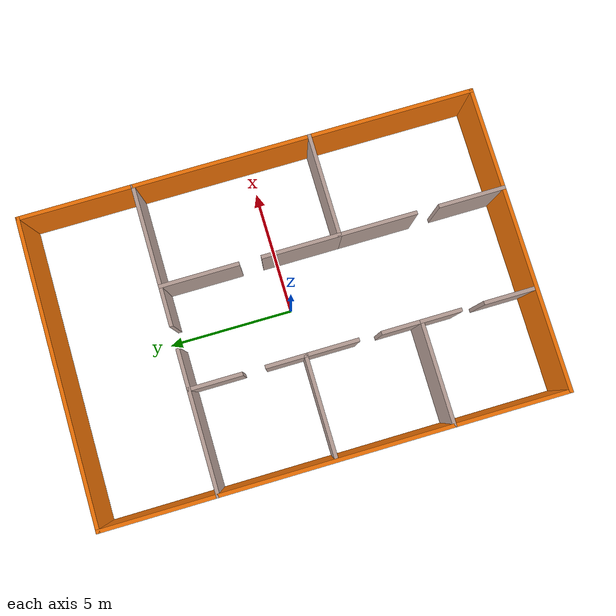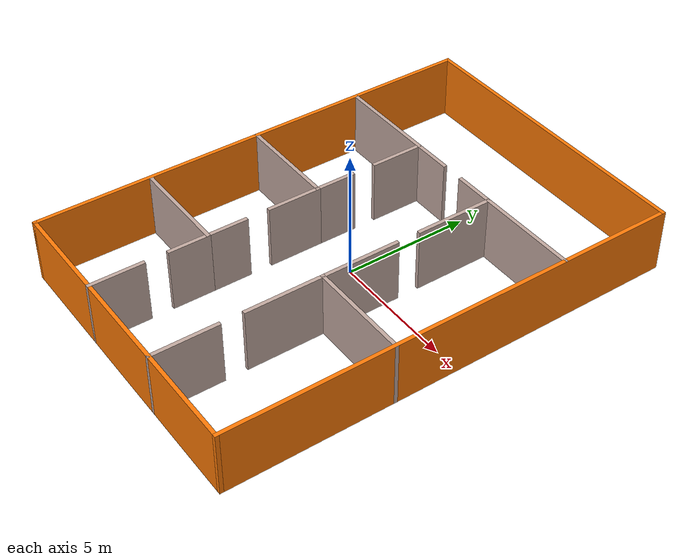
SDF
<?xml version='1.0'?>
<sdf version='1.7'>
  <model name='map_offices'>
    <pose>0 0 0 0 -0 0</pose>
    <link name='Wall_10'>
      <collision name='Wall_10_Collision'>
        <geometry>
          <box>
            <size>12.15 0.15 2.5</size>
          </box>
        </geometry>
        <pose>0 0 1.25 0 -0 0</pose>
      </collision>
      <visual name='Wall_10_Visual'>
        <pose>0 0 1.25 0 -0 0</pose>
        <geometry>
          <box>
            <size>12.15 0.15 2.5</size>
          </box>
        </geometry>
        <material>
          <script>
            <uri>file://media/materials/scripts/gazebo.material</uri>
            <name>Gazebo/Grey</name>
          </script>
          <ambient>0.996078 0.47451 0.0196078 1</ambient>
        </material>
        <meta>
          <layer>0</layer>
        </meta>
      </visual>
      <pose>0 -9 0 0 -0 0</pose>
    </link>
    <link name='Wall_12'>
      <collision name='Wall_12_Collision'>
        <geometry>
          <box>
            <size>18.15 0.15 2.5</size>
          </box>
        </geometry>
        <pose>0 0 1.25 0 -0 0</pose>
      </collision>
      <visual name='Wall_12_Visual'>
        <pose>0 0 1.25 0 -0 0</pose>
        <geometry>
          <box>
            <size>18.15 0.15 2.5</size>
          </box>
        </geometry>
        <material>
          <script>
            <uri>file://media/materials/scripts/gazebo.material</uri>
            <name>Gazebo/Grey</name>
          </script>
          <ambient>0.996078 0.47451 0.0196078 1</ambient>
        </material>
        <meta>
          <layer>0</layer>
        </meta>
      </visual>
      <pose>-6 0 0 0 -0 -1.5708</pose>
    </link>
    <link name='Wall_14'>
      <collision name='Wall_14_Collision'>
        <geometry>
          <box>
            <size>18.15 0.15 2.5</size>
          </box>
        </geometry>
        <pose>0 0 1.25 0 -0 0</pose>
      </collision>
      <visual name='Wall_14_Visual'>
        <pose>0 0 1.25 0 -0 0</pose>
        <geometry>
          <box>
            <size>18.15 0.15 2.5</size>
          </box>
        </geometry>
        <material>
          <script>
            <uri>file://media/materials/scripts/gazebo.material</uri>
            <name>Gazebo/Grey</name>
          </script>
          <ambient>0.996078 0.47451 0.0196078 1</ambient>
        </material>
        <meta>
          <layer>0</layer>
        </meta>
      </visual>
      <pose>6 0 0 0 -0 -1.5708</pose>
    </link>
    <link name='Wall_17'>
      <collision name='Wall_17_Collision'>
        <geometry>
          <box>
            <size>5.65 0.15 2.5</size>
          </box>
        </geometry>
        <pose>0 0 1.25 0 -0 0</pose>
      </collision>
      <visual name='Wall_17_Visual'>
        <pose>0 0 1.25 0 -0 0</pose>
        <geometry>
          <box>
            <size>5.65 0.15 2.5</size>
          </box>
        </geometry>
        <material>
          <script>
            <uri>file://media/materials/scripts/gazebo.material</uri>
            <name>Gazebo/Grey</name>
          </script>
          <ambient>0.760784 0.662745 0.627451 1</ambient>
        </material>
        <meta>
          <layer>0</layer>
        </meta>
      </visual>
      <pose>-3.25 4.5 0 0 -0 0</pose>
    </link>
    <link name='Wall_19'>
      <collision name='Wall_19_Collision'>
        <geometry>
          <box>
            <size>5.65 0.15 2.5</size>
          </box>
        </geometry>
        <pose>0 0 1.25 0 -0 0</pose>
      </collision>
      <visual name='Wall_19_Visual'>
        <pose>0 0 1.25 0 -0 0</pose>
        <geometry>
          <box>
            <size>5.65 0.15 2.5</size>
          </box>
        </geometry>
        <material>
          <script>
            <uri>file://media/materials/scripts/gazebo.material</uri>
            <name>Gazebo/Grey</name>
          </script>
          <ambient>0.760784 0.662745 0.627451 1</ambient>
        </material>
        <meta>
          <layer>0</layer>
        </meta>
      </visual>
      <pose>3.25 4.5 0 0 -0 0</pose>
    </link>
    <link name='Wall_21'>
      <collision name='Wall_21_Collision'>
        <geometry>
          <box>
            <size>2.15 0.15 2.5</size>
          </box>
        </geometry>
        <pose>0 0 1.25 0 -0 0</pose>
      </collision>
      <visual name='Wall_21_Visual'>
        <pose>0 0 1.25 0 -0 0</pose>
        <geometry>
          <box>
            <size>2.15 0.15 2.5</size>
          </box>
        </geometry>
        <material>
          <script>
            <uri>file://media/materials/scripts/gazebo.material</uri>
            <name>Gazebo/Grey</name>
          </script>
          <ambient>0.760784 0.662745 0.627451 1</ambient>
        </material>
        <meta>
          <layer>0</layer>
        </meta>
      </visual>
      <pose>-2 3.5 0 0 -0 -1.5708</pose>
    </link>
    <link name='Wall_23'>
      <collision name='Wall_23_Collision'>
        <geometry>
          <box>
            <size>1.65 0.15 2.5</size>
          </box>
        </geometry>
        <pose>0 0 1.25 0 -0 0</pose>
      </collision>
      <visual name='Wall_23_Visual'>
        <pose>0 0 1.25 0 -0 0</pose>
        <geometry>
          <box>
            <size>1.65 0.15 2.5</size>
          </box>
        </geometry>
        <material>
          <script>
            <uri>file://media/materials/scripts/gazebo.material</uri>
            <name>Gazebo/Grey</name>
          </script>
          <ambient>0.760784 0.662745 0.627451 1</ambient>
        </material>
        <meta>
          <layer>0</layer>
        </meta>
      </visual>
      <pose>-2 0.75 0 0 -0 -1.5708</pose>
    </link>
    <link name='Wall_25'>
      <collision name='Wall_25_Collision'>
        <geometry>
          <box>
            <size>4.15 0.15 2.5</size>
          </box>
        </geometry>
        <pose>0 0 1.25 0 -0 0</pose>
      </collision>
      <visual name='Wall_25_Visual'>
        <pose>0 0 1.25 0 -0 0</pose>
        <geometry>
          <box>
            <size>4.15 0.15 2.5</size>
          </box>
        </geometry>
        <material>
          <script>
            <uri>file://media/materials/scripts/gazebo.material</uri>
            <name>Gazebo/Grey</name>
          </script>
          <ambient>0.760784 0.662745 0.627451 1</ambient>
        </material>
        <meta>
          <layer>0</layer>
        </meta>
      </visual>
      <pose>-4 0 0 0 -0 3.14159</pose>
    </link>
    <link name='Wall_27'>
      <collision name='Wall_27_Collision'>
        <geometry>
          <box>
            <size>2.15 0.15 2.5</size>
          </box>
        </geometry>
        <pose>0 0 1.25 0 -0 0</pose>
      </collision>
      <visual name='Wall_27_Visual'>
        <pose>0 0 1.25 0 -0 0</pose>
        <geometry>
          <box>
            <size>2.15 0.15 2.5</size>
          </box>
        </geometry>
        <material>
          <script>
            <uri>file://media/materials/scripts/gazebo.material</uri>
            <name>Gazebo/Grey</name>
          </script>
          <ambient>0.760784 0.662745 0.627451 1</ambient>
        </material>
        <meta>
          <layer>0</layer>
        </meta>
      </visual>
      <pose>-2 -1 0 0 -0 -1.5708</pose>
    </link>
    <link name='Wall_29'>
      <collision name='Wall_29_Collision'>
        <geometry>
          <box>
            <size>1.65 0.15 2.5</size>
          </box>
        </geometry>
        <pose>0 0 1.25 0 -0 0</pose>
      </collision>
      <visual name='Wall_29_Visual'>
        <pose>0 0 1.25 0 -0 0</pose>
        <geometry>
          <box>
            <size>1.65 0.15 2.5</size>
          </box>
        </geometry>
        <material>
          <script>
            <uri>file://media/materials/scripts/gazebo.material</uri>
            <name>Gazebo/Grey</name>
          </script>
          <ambient>0.760784 0.662745 0.627451 1</ambient>
        </material>
        <meta>
          <layer>0</layer>
        </meta>
      </visual>
      <pose>-2 -3.75 0 0 -0 -1.5708</pose>
    </link>
    <link name='Wall_31'>
      <collision name='Wall_31_Collision'>
        <geometry>
          <box>
            <size>4.15 0.15 2.5</size>
          </box>
        </geometry>
        <pose>0 0 1.25 0 -0 0</pose>
      </collision>
      <visual name='Wall_31_Visual'>
        <pose>0 0 1.25 0 -0 0</pose>
        <geometry>
          <box>
            <size>4.15 0.15 2.5</size>
          </box>
        </geometry>
        <material>
          <script>
            <uri>file://media/materials/scripts/gazebo.material</uri>
            <name>Gazebo/Grey</name>
          </script>
          <ambient>0.760784 0.662745 0.627451 1</ambient>
        </material>
        <meta>
          <layer>0</layer>
        </meta>
      </visual>
      <pose>-4 -4.5 0 0 -0 3.14159</pose>
    </link>
    <link name='Wall_33'>
      <collision name='Wall_33_Collision'>
        <geometry>
          <box>
            <size>1.65 0.15 2.5</size>
          </box>
        </geometry>
        <pose>0 0 1.25 0 -0 0</pose>
      </collision>
      <visual name='Wall_33_Visual'>
        <pose>0 0 1.25 0 -0 0</pose>
        <geometry>
          <box>
            <size>1.65 0.15 2.5</size>
          </box>
        </geometry>
        <material>
          <script>
            <uri>file://media/materials/scripts/gazebo.material</uri>
            <name>Gazebo/Grey</name>
          </script>
          <ambient>0.760784 0.662745 0.627451 1</ambient>
        </material>
        <meta>
          <layer>0</layer>
        </meta>
      </visual>
      <pose>-2 -5.25 0 0 -0 -1.5708</pose>
    </link>
    <link name='Wall_35'>
      <collision name='Wall_35_Collision'>
        <geometry>
          <box>
            <size>2.15 0.15 2.5</size>
          </box>
        </geometry>
        <pose>0 0 1.25 0 -0 0</pose>
      </collision>
      <visual name='Wall_35_Visual'>
        <pose>0 0 1.25 0 -0 0</pose>
        <geometry>
          <box>
            <size>2.15 0.15 2.5</size>
          </box>
        </geometry>
        <material>
          <script>
            <uri>file://media/materials/scripts/gazebo.material</uri>
            <name>Gazebo/Grey</name>
          </script>
          <ambient>0.760784 0.662745 0.627451 1</ambient>
        </material>
        <meta>
          <layer>0</layer>
        </meta>
      </visual>
      <pose>-2 -8 0 0 -0 -1.5708</pose>
    </link>
    <link name='Wall_37'>
      <collision name='Wall_37_Collision'>
        <geometry>
          <box>
            <size>3.15 0.15 2.5</size>
          </box>
        </geometry>
        <pose>0 0 1.25 0 -0 0</pose>
      </collision>
      <visual name='Wall_37_Visual'>
        <pose>0 0 1.25 0 -0 0</pose>
        <geometry>
          <box>
            <size>3.15 0.15 2.5</size>
          </box>
        </geometry>
        <material>
          <script>
            <uri>file://media/materials/scripts/gazebo.material</uri>
            <name>Gazebo/Grey</name>
          </script>
          <ambient>0.760784 0.662745 0.627451 1</ambient>
        </material>
        <meta>
          <layer>0</layer>
        </meta>
      </visual>
      <pose>2 3 0 0 -0 -1.5708</pose>
    </link>
    <link name='Wall_39'>
      <collision name='Wall_39_Collision'>
        <geometry>
          <box>
            <size>3.15 0.15 2.5</size>
          </box>
        </geometry>
        <pose>0 0 1.25 0 -0 0</pose>
      </collision>
      <visual name='Wall_39_Visual'>
        <pose>0 0 1.25 0 -0 0</pose>
        <geometry>
          <box>
            <size>3.15 0.15 2.5</size>
          </box>
        </geometry>
        <material>
          <script>
            <uri>file://media/materials/scripts/gazebo.material</uri>
            <name>Gazebo/Grey</name>
          </script>
          <ambient>0.760784 0.662745 0.627451 1</ambient>
        </material>
        <meta>
          <layer>0</layer>
        </meta>
      </visual>
      <pose>2 -1 0 0 -0 -1.5708</pose>
    </link>
    <link name='Wall_41'>
      <collision name='Wall_41_Collision'>
        <geometry>
          <box>
            <size>4.15 0.15 2.5</size>
          </box>
        </geometry>
        <pose>0 0 1.25 0 -0 0</pose>
      </collision>
      <visual name='Wall_41_Visual'>
        <pose>0 0 1.25 0 -0 0</pose>
        <geometry>
          <box>
            <size>4.15 0.15 2.5</size>
          </box>
        </geometry>
        <material>
          <script>
            <uri>file://media/materials/scripts/gazebo.material</uri>
            <name>Gazebo/Grey</name>
          </script>
          <ambient>0.760784 0.662745 0.627451 1</ambient>
        </material>
        <meta>
          <layer>0</layer>
        </meta>
      </visual>
      <pose>4 -2.5 0 0 -0 0</pose>
    </link>
    <link name='Wall_43'>
      <collision name='Wall_43_Collision'>
        <geometry>
          <box>
            <size>3.15 0.15 2.5</size>
          </box>
        </geometry>
        <pose>0 0 1.25 0 -0 0</pose>
      </collision>
      <visual name='Wall_43_Visual'>
        <pose>0 0 1.25 0 -0 0</pose>
        <geometry>
          <box>
            <size>3.15 0.15 2.5</size>
          </box>
        </geometry>
        <material>
          <script>
            <uri>file://media/materials/scripts/gazebo.material</uri>
            <name>Gazebo/Grey</name>
          </script>
          <ambient>0.760784 0.662745 0.627451 1</ambient>
        </material>
        <meta>
          <layer>0</layer>
        </meta>
      </visual>
      <pose>2 -4 0 0 -0 -1.5708</pose>
    </link>
    <link name='Wall_45'>
      <collision name='Wall_45_Collision'>
        <geometry>
          <box>
            <size>2.65 0.15 2.5</size>
          </box>
        </geometry>
        <pose>0 0 1.25 0 -0 0</pose>
      </collision>
      <visual name='Wall_45_Visual'>
        <pose>0 0 1.25 0 -0 0</pose>
        <geometry>
          <box>
            <size>2.65 0.15 2.5</size>
          </box>
        </geometry>
        <material>
          <script>
            <uri>file://media/materials/scripts/gazebo.material</uri>
            <name>Gazebo/Grey</name>
          </script>
          <ambient>0.760784 0.662745 0.627451 1</ambient>
        </material>
        <meta>
          <layer>0</layer>
        </meta>
      </visual>
      <pose>2 -7.75 0 0 -0 -1.5708</pose>
    </link>
    <link name='Wall_8'>
      <collision name='Wall_8_Collision'>
        <geometry>
          <box>
            <size>12.15 0.15 2.5</size>
          </box>
        </geometry>
        <pose>0 0 1.25 0 -0 0</pose>
      </collision>
      <visual name='Wall_8_Visual'>
        <pose>0 0 1.25 0 -0 0</pose>
        <geometry>
          <box>
            <size>12.15 0.15 2.5</size>
          </box>
        </geometry>
        <material>
          <script>
            <uri>file://media/materials/scripts/gazebo.material</uri>
            <name>Gazebo/Grey</name>
          </script>
          <ambient>0.996078 0.47451 0.0196078 1</ambient>
        </material>
        <meta>
          <layer>0</layer>
        </meta>
      </visual>
      <pose>0 9 0 0 -0 0</pose>
    </link>
    <static>1</static>
  </model>
</sdf>
